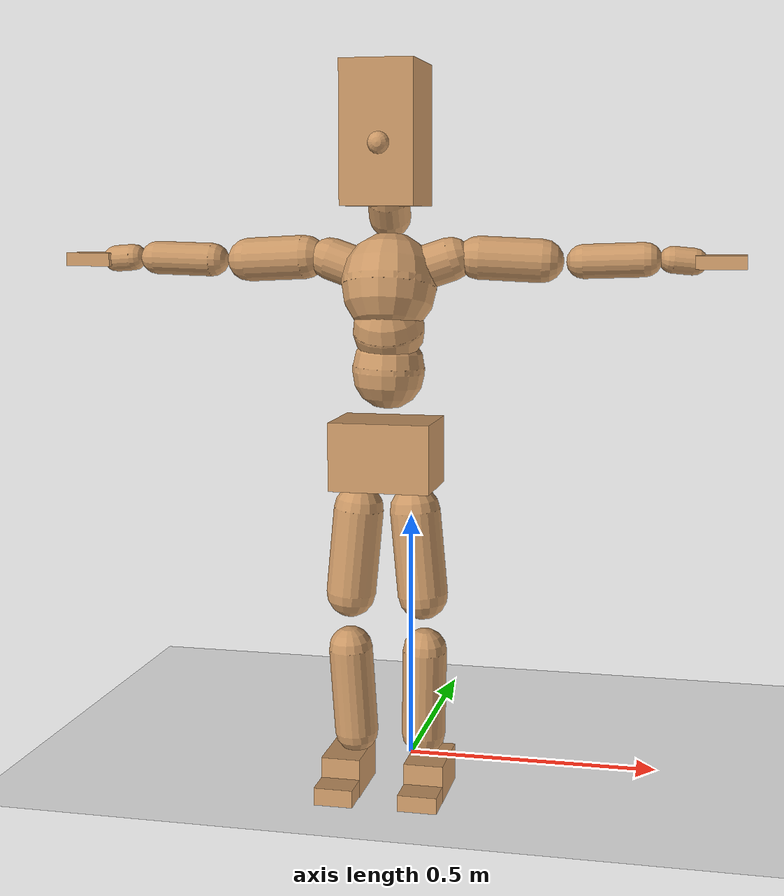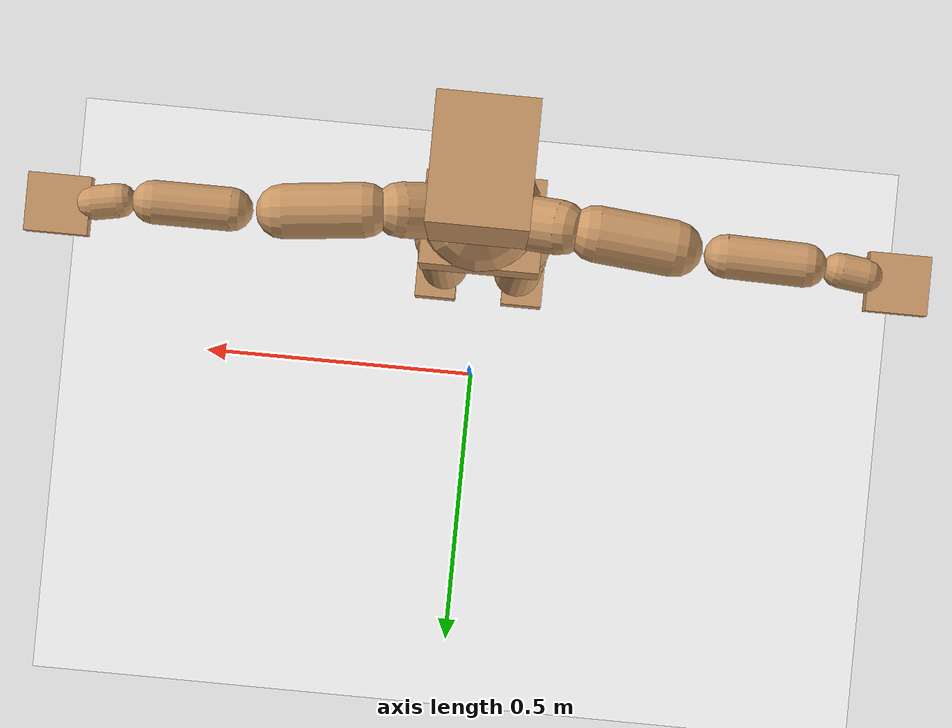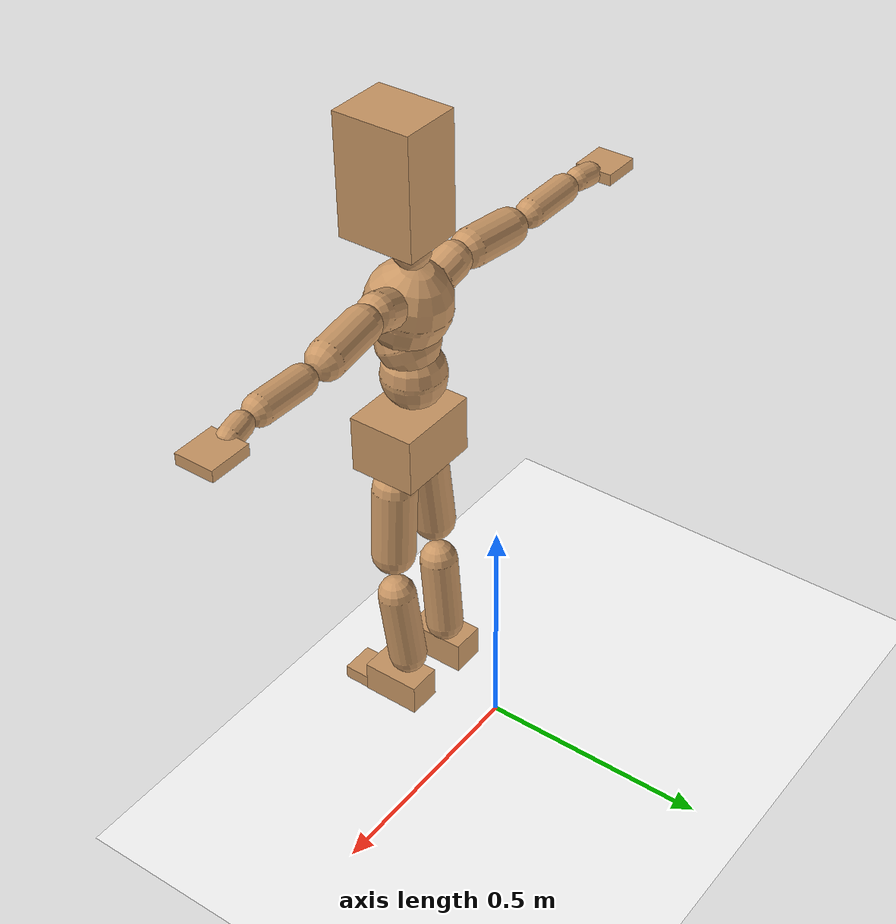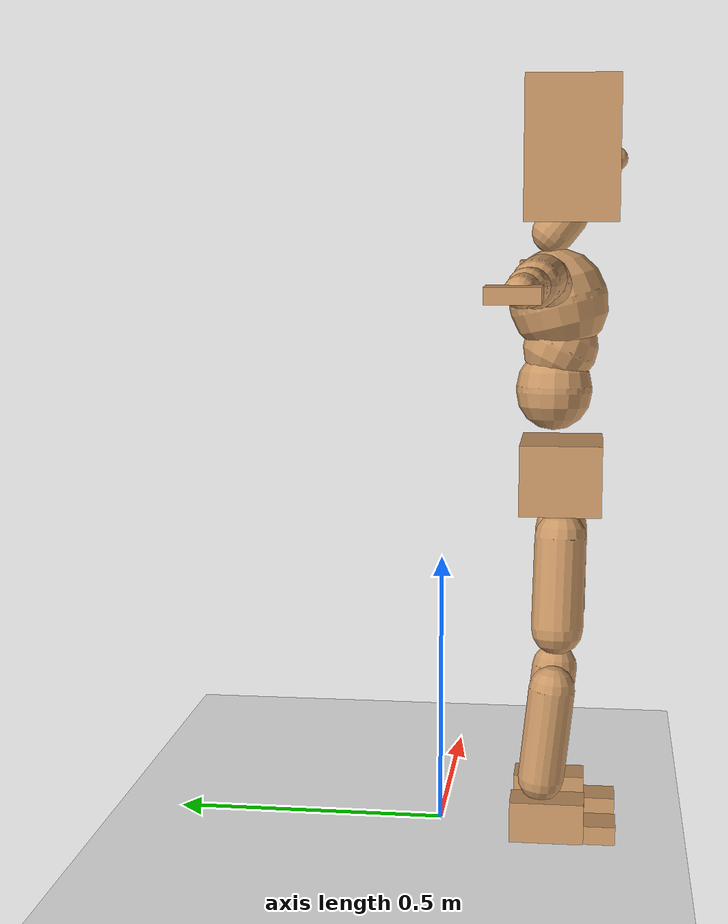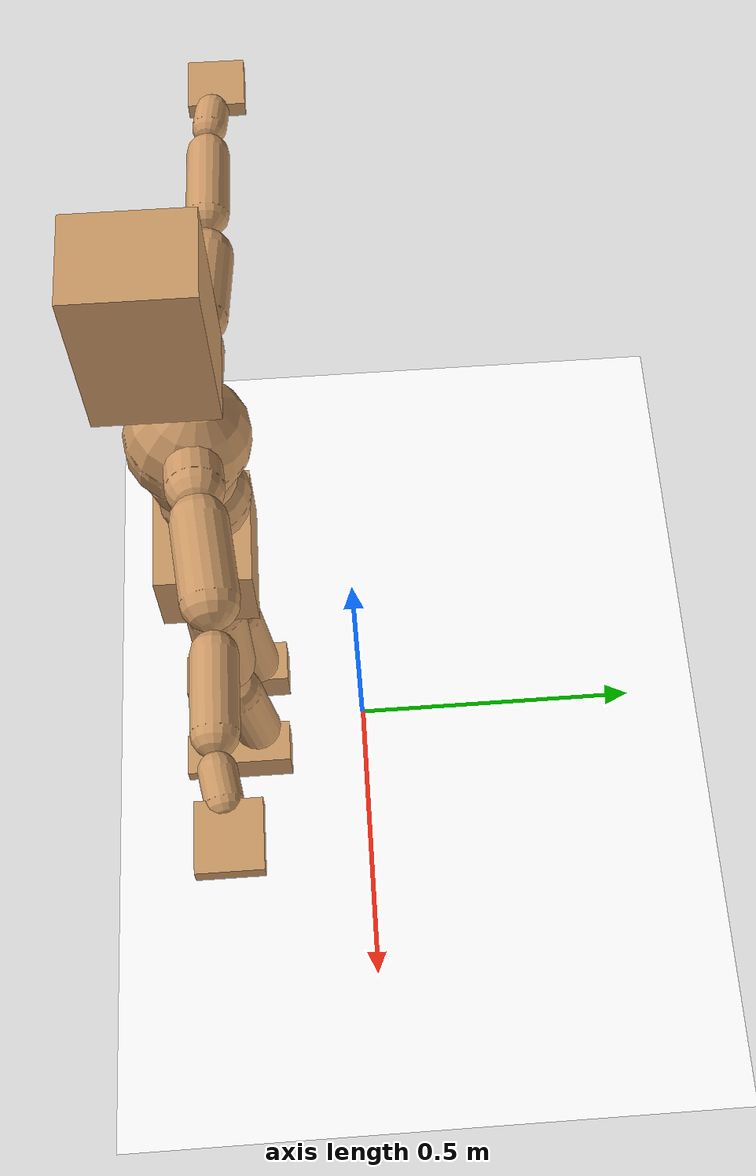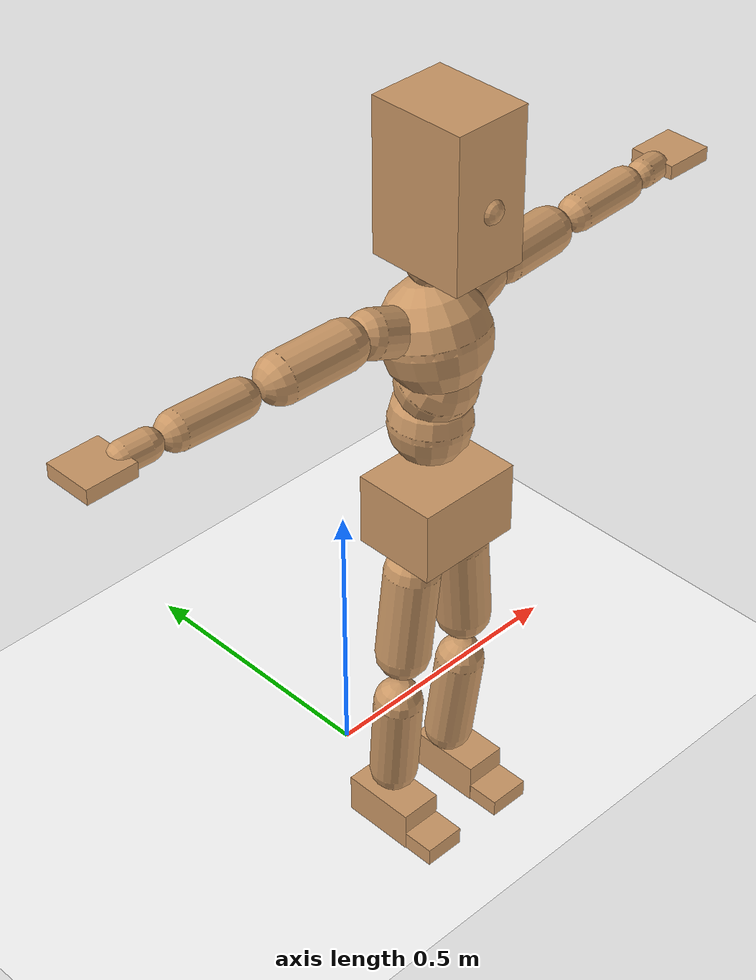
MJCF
<mujoco model="humanoid">
  <option integrator="implicitfast" />

  <visual>
    <global offwidth="1280" offheight="960" />
    <headlight active="1" ambient="0.34 0.34 0.34" diffuse="0.5 0.5 0.5" />
  </visual>

  <default>
    <joint damping="2" stiffness="2" armature="0.01" limited="true" solimplimit="0 .99 .01" />
    <geom condim="1" friction="0.7 0.005 0.0001" solimp=".99 .99 .003" solref="0.015 1" margin="0.001" rgba="0.8 0.6 .4 1" />
    <default class="smplcontact">
      <geom condim="3" friction="1. 0.005 0.0001" solref="0.015 1" solimp="0.98 0.98 0.001" priority="1" />
    </default>
    <default class="stiff_medium">
      <joint stiffness="10" />
    </default>
    <default class="stiff_medium_higher">
      <joint stiffness="50" />
    </default>
    <default class="stiff_high">
      <joint stiffness="100" />
    </default>
  </default>

  <asset>
    <texture type="skybox" builtin="gradient" rgb1="0.99 0.99 0.99" rgb2="0.608 0.828 0.892" width="100" />
    <texture builtin="flat" height="1278" mark="cross" markrgb="1 1 1" name="texgeom" random="0.01" rgb1="0.8 0.6 0.4" rgb2="0.8 0.6 0.4" type="cube" width="127" />
    <texture name="texplane" type="2d" builtin="checker" markrgb="1 1 1" rgb1="0.756 0.772 0.76" rgb2="0.6 0.6 0.6" width="100" height="100" />
    <material name="MatPlane" reflectance="0.5" texture="texplane" texrepeat="1 1" texuniform="true" />
    <material name="geom" texture="texgeom" texuniform="true" />
  </asset>

  <worldbody>
    <light name="tracking_light" pos="0 0 7" dir="0 0 -1" directional="true" cutoff="100" exponent="1" diffuse="1 1 1" specular="0.1 0.1 0.1" mode="trackcom" />
    <camera name="back" pos="0 3 2.4" xyaxes="-1 0 0 0 -1 2" mode="trackcom" />
    <camera name="side" pos="-3 0 2.4" xyaxes="0 -1 0 1 0 2" mode="trackcom" />
    <camera name="front_side" pos="-2.8 -2.8 0.8" xyaxes="0.5 -0.5 0 0.1 0.1 1" mode="trackcom" />
    <geom condim="3" name="floor" pos="0 0 0" rgba="1 1 1 1" size="100 100 .2" type="plane" material="MatPlane" />
    <body name="Pelvis" pos="-0.0018 -0.2233 0.672608" euler="90 0 0">
      <site name="Pelvis" size="0.01" />
      <freejoint name="Pelvis" />
      <geom type="box" pos="-0.0000 -0.0121 -0.0055" size="0.0948737 0.0640775 0.0736625" quat="1.0000 0.0000 0.0000 0.0000" density="3165.830099" name="Pelvis" />
      <body name="L_Hip" pos="0.0496925 -0.065351 -0.004862">
        <joint name="L_Hip_x" type="hinge" pos="0 0 0" axis="1 0 0" stiffness="3.1557858999999997" range="-160.0 22.92" class="stiff_medium" damping="4.025898541858063" armature="0.0022826304280351814"/>
        <joint name="L_Hip_y" type="hinge" pos="0 0 0" axis="0 1 0" stiffness="3.1624607000000005" range="-70.0 70.0" class="stiff_medium" damping="2.8159651210540835" armature="0.0025074333929250535"/>
        <joint name="L_Hip_z" type="hinge" pos="0 0 0" axis="0 0 1" stiffness="3.1611226000000006" range="-28.65 90.0" class="stiff_medium" damping="2.6860026038692637" armature="0.0022822936345437738"/>
        <geom type="capsule" density="2040.816327" fromto="0.0049335 -0.053625 -0.0006435 0.019591 -0.214643 -0.002574" size="0.0476625" name="L_Hip" />
        <body name="L_Knee" pos="0.0245245 -0.268268 -0.0032175">
          <joint name="L_Knee_x" type="hinge" pos="0 0 0" axis="1 0 0" range="-5.16 171.89" damping="2.1741224999033997" armature="0.002319360665224302" stiffness="0.63686848"/>
          <joint name="L_Knee_y" type="hinge" pos="0 0 0" axis="0 1 0" range="-4.58 6.88" damping="2.2721775038441243" armature="0.0025472915135969936" stiffness="0.63336766"/>
          <joint name="L_Knee_z" type="hinge" pos="0 0 0" axis="0 0 1" range="-6.88 4.58" damping="2.1771021570783384" armature="0.002317693409750456" stiffness="0.63907474"/>
          <geom type="capsule" density="1234.567901" fromto="-0.0019305 -0.056914 -0.0062205 -0.0077935 -0.227656 -0.025025" size="0.0419275" name="L_Knee" />
          <body name="L_Ankle" pos="-0.009724 -0.28457 -0.0312455">
            <joint name="L_Ankle_x" type="hinge" pos="0 0 0" axis="1 0 0" range="-45.84 45.84" class="stiff_medium" damping="1.7383543219121569" armature="0.002522106267759108" stiffness="3.32821"/>
            <joint name="L_Ankle_y" type="hinge" pos="0 0 0" axis="0 1 0" range="-74.48 22.92" class="stiff_medium" damping="0.8709299731366263" armature="0.0025322888549960117" stiffness="3.32821"/>
            <joint name="L_Ankle_z" type="hinge" pos="0 0 0" axis="0 0 1" range="-4.58 4.58" class="stiff_medium" damping="1.7646378238794749" armature="0.0025989501275678127" stiffness="3.32821"/>
            <geom type="box" pos="0.0166595 -0.0170885 0.017303" size="0.0374325 0.03596 0.065875" quat="1.0000 0.0000 0.0000 0.0000" density="449.071558" name="L_Ankle" class="smplcontact" />
            <body name="L_Toe" pos="0.018876 -0.039897 0.0852995">
              <joint name="L_Toe_x" type="hinge" pos="0 0 0" axis="1 0 0" range="-91.67 22.92" armature="0.0026376029774375764" damping="0.5925705563234649" stiffness="0.665642"/>
              <joint name="L_Toe_y" type="hinge" pos="0 0 0" axis="0 1 0" range="-4.58 4.58" armature="0.00268434201334499" damping="0.5977977561762817" stiffness="0.665642"/>
              <joint name="L_Toe_z" type="hinge" pos="0 0 0" axis="0 0 1" range="-4.58 4.58" armature="0.0027788458282327778" damping="0.6082296432757158" stiffness="0.665642"/>
              <geom type="box" pos="-0.002145 0.0039325 0.017732" size="0.037045 0.0155 0.03844" quat="1.0000 0.0000 0.0000 0.0000" density="423.206892" name="L_Toe" class="smplcontact" />
            </body>
          </body>
        </body>
      </body>
      <body name="R_Hip" pos="-0.0484055 -0.0647075 -0.0030745">
        <joint name="R_Hip_x" type="hinge" pos="0 0 0" axis="1 0 0" stiffness="3.1557858999999997" range="-160.0 22.92" class="stiff_medium" damping="4.025898541858063" armature="0.0022826304280351814"/>
        <joint name="R_Hip_y" type="hinge" pos="0 0 0" axis="0 1 0" stiffness="3.1624607000000005" range="-70.0 70.0" class="stiff_medium" damping="2.8159651210540835" armature="0.0025074333929250535"/>
        <joint name="R_Hip_z" type="hinge" pos="0 0 0" axis="0 0 1" stiffness="3.1611226000000006" range="-90.0 28.65" class="stiff_medium" damping="2.6860026038692637" armature="0.0022822936345437738"/>
        <geom type="capsule" density="2040.816327" fromto="-0.0055055 -0.0546975 -0.001287 -0.021879 -0.218861 -0.0050765" size="0.046965" name="R_Hip" />
        <body name="R_Knee" pos="-0.0273845 -0.273559 -0.0063635">
          <joint name="R_Knee_x" type="hinge" pos="0 0 0" axis="1 0 0" range="-5.16 171.89" damping="2.1741224999033997" armature="0.002319360665224302" stiffness="0.63686848"/>
          <joint name="R_Knee_y" type="hinge" pos="0 0 0" axis="0 1 0" range="-6.88 4.58" damping="2.2721775038441243" armature="0.0025472915135969936" stiffness="0.63336766"/>
          <joint name="R_Knee_z" type="hinge" pos="0 0 0" axis="0 0 1" range="-4.58 6.88" damping="2.1771021570783384" armature="0.002317693409750456" stiffness="0.63907474"/>
          <geom type="capsule" density="1234.567901" fromto="0.002288 -0.0569855 -0.0060775 0.009009 -0.22787 -0.024167" size="0.0419275" name="R_Knee" />
          <body name="R_Ankle" pos="0.011297 -0.284856 -0.0302445">
            <joint name="R_Ankle_x" type="hinge" pos="0 0 0" axis="1 0 0" range="-45.84 45.84" class="stiff_medium" damping="1.7383543219121569" armature="0.002522106267759108" stiffness="3.32821"/>
            <joint name="R_Ankle_y" type="hinge" pos="0 0 0" axis="0 1 0" range="-22.92 74.48" class="stiff_medium" damping="0.8709299731366263" armature="0.0025322888549960117" stiffness="3.32821"/>
            <joint name="R_Ankle_z" type="hinge" pos="0 0 0" axis="0 0 1" range="-4.58 4.58" class="stiff_medium" damping="1.7646378238794749" armature="0.0025989501275678127" stiffness="3.32821"/>
            <geom type="box" pos="-0.015158 -0.012441 0.018304" size="0.0374325 0.037045 0.0670375" quat="1.0000 0.0000 0.0000 0.0000" density="434.700981" name="R_Ankle" class="smplcontact" />
            <body name="R_Toe" pos="-0.018161 -0.0343915 0.0881595">
              <joint name="R_Toe_x" type="hinge" pos="0 0 0" axis="1 0 0" range="-91.67 22.92" armature="0.0026376029774375764" damping="0.5925705563234649" stiffness="0.665642"/>
              <joint name="R_Toe_y" type="hinge" pos="0 0 0" axis="0 1 0" range="-4.58 4.58" armature="0.00268434201334499" damping="0.5977977561762817" stiffness="0.665642"/>
              <joint name="R_Toe_z" type="hinge" pos="0 0 0" axis="0 0 1" range="-4.58 4.58" armature="0.0027788458282327778" damping="0.6082296432757158" stiffness="0.665642"/>
              <geom type="box" pos="0.003003 0.0032175 0.0162305" size="0.0371225 0.01674 0.0382075" quat="1.0000 0.0000 0.0000 0.0000" density="407.384095" name="R_Toe" class="smplcontact" />
            </body>
          </body>
        </body>
      </body>
      <body name="Torso" pos="-0.00203125 0.0885625 -0.0216938">
        <joint name="Torso_x" type="hinge" pos="0 0 0" axis="1 0 0" range="-25.78 57.3" class="stiff_medium" damping="9.994283800374737" armature="0.006507570999936357" stiffness="6.821846170212766"/>
        <joint name="Torso_y" type="hinge" pos="0 0 0" axis="0 1 0" range="-57.3 57.3" class="stiff_high" damping="8.753897819572359" armature="0.0027081106237385054" stiffness="70.74187291666667"/>
        <joint name="Torso_z" type="hinge" pos="0 0 0" axis="0 0 1" range="-34.38 34.38" class="stiff_high" damping="11.82187074003732" armature="0.005188064995114073" stiffness="67.34525681818181"/>
        <geom type="capsule" density="2040.816327" fromto="0.00203125 0.0494 0.00040625 0.0024375 0.0603688 0.0004875" size="0.0682487" name="Torso" />
        <body name="Spine" pos="0.00446875 0.10985 0.00089375">
          <joint name="Spine_x" type="hinge" pos="0 0 0" axis="1 0 0" stiffness="7.167283333333333" range="-25.78 57.3" class="stiff_medium" damping="11.193627746528671" armature="0.007769706769594652"/>
          <joint name="Spine_y" type="hinge" pos="0 0 0" axis="0 1 0" stiffness="7.53591075" range="-57.3 57.3" class="stiff_high" damping="3.6005525001085057" armature="0.002687958599189059"/>
          <joint name="Spine_z" type="hinge" pos="0 0 0" axis="0 0 1" stiffness="15.408532444444443" range="-34.38 34.38" class="stiff_high" damping="7.409908682139257" armature="0.0049491650590715594"/>
          <geom type="capsule" density="2040.816327" fromto="0.00056875 0.0193375 0.0092625 0.00065 0.0236438 0.011375" size="0.0670062" name="Spine" />
          <body name="Chest" pos="0.00121875 0.0429812 0.0206375">
            <joint name="Chest_x" type="hinge" pos="0 0 0" axis="1 0 0" stiffness="7.83186564102564" range="-25.78 57.3" class="stiff_medium" damping="12.21355434238851" armature="0.008465183790980255"/>
            <joint name="Chest_y" type="hinge" pos="0 0 0" axis="0 1 0" stiffness="7.006512608695653" range="-57.3 57.3" class="stiff_high" damping="3.450365371342459" armature="0.0026549007555181775"/>
            <joint name="Chest_z" type="hinge" pos="0 0 0" axis="0 0 1" stiffness="16.419637368421053" range="-34.38 34.38" class="stiff_high" damping="7.489992067292679" armature="0.0047453326016269224"/>
            <geom type="capsule" density="2040.816327" fromto="-0.00073125 0.0554125 -0.0140562 -0.0008125 0.0676812 -0.017225" size="0.0889275" name="Chest" />
            <body name="Neck" pos="-0.002275 0.173794 -0.0348562">
              <joint name="Neck_x" type="hinge" pos="0 0 0" axis="1 0 0" range="-28.65 57.3" class="stiff_medium_higher" damping="14.3871556586408" armature="0.015114227395169953" stiffness="68.47529897959183"/>
              <joint name="Neck_y" type="hinge" pos="0 0 0" axis="0 1 0" range="-40.11 40.11" class="stiff_medium_higher" damping="14.697656227126172" armature="0.01569823710106506" stiffness="68.804254"/>
              <joint name="Neck_z" type="hinge" pos="0 0 0" axis="0 0 1" range="-40.11 40.11" class="stiff_medium_higher" damping="14.542129157567018" armature="0.015132360867987043" stiffness="69.87459600000001"/>
              <geom type="capsule" density="1000" fromto="0.0008125 0.0105625 0.00836875 0.00333125 0.04225 0.0333937" size="0.038695" name="Neck" />
              <body name="Head" pos="0.005395 0.0674375 0.0532238">
                <joint name="Head_x" type="hinge" pos="0 0 0" axis="1 0 0" range="-28.65 57.3" class="stiff_medium_higher" damping="3.006435346450607" armature="0.015818080190691527" stiffness="71.42660000000001"/>
                <joint name="Head_y" type="hinge" pos="0 0 0" axis="0 1 0" range="-40.11 40.11" class="stiff_medium_higher" damping="3.1111271871938317" armature="0.01693891417010015" stiffness="71.42660000000001"/>
                <joint name="Head_z" type="hinge" pos="0 0 0" axis="0 0 1" range="-40.11 40.11" class="stiff_medium_higher" damping="3.001156765649567" armature="0.01576258342830992" stiffness="71.42660000000001"/>
                <geom type="box" pos="-0.0043575 0.090885 -0.012035" size="0.0674175 0.128383 0.08455" quat="1.0000 0.0000 0.0000 0.0000" density="1018.069894" name="Head" />
                <geom type="capsule" name="nose" size="0.02225 0.011125" pos="0 0.072625 0.051875" quat="1 0 0 0" mass="0" contype="0" conaffinity="0" />
              </body>
            </body>
            <body name="L_Thorax" pos="0.058115 0.0897538 -0.0251488">
              <joint name="L_Thorax_x" type="hinge" pos="0 0 0" axis="1 0 0" range="-10.89 4.58" class="stiff_medium_higher" damping="5.85684866620945" armature="0.002574137580271888" stiffness="16.6573635"/>
              <joint name="L_Thorax_y" type="hinge" pos="0 0 0" axis="0 1 0" range="-28.65 17.19" class="stiff_medium_higher" damping="5.728291605554939" armature="0.002465354698788312" stiffness="16.637223000000002"/>
              <joint name="L_Thorax_z" type="hinge" pos="0 0 0" axis="0 0 1" range="-31.51 40.11" class="stiff_medium_higher" damping="5.728243594611154" armature="0.002465256398734292" stiffness="16.6376075"/>
              <geom type="capsule" density="1000" fromto="0.0134225 0.00449875 -0.0013275 0.05369 0.017995 -0.00523625" size="0.0403775" name="L_Thorax" />
              <body name="L_Shoulder" pos="0.0671125 0.0224937 -0.00656375">
                <joint name="L_Shoulder_x" type="hinge" pos="0 0 0" axis="1 0 0" range="-97.4 97.4" class="stiff_medium" damping="1.7720426341330549" armature="0.002616637975370057" stiffness="3.3335133"/>
                <joint name="L_Shoulder_y" type="hinge" pos="0 0 0" axis="0 1 0" range="-108.86 80.21" class="stiff_medium" damping="1.7203044853046314" armature="0.002469151422900235" stiffness="3.3293573999999992"/>
                <joint name="L_Shoulder_z" type="hinge" pos="0 0 0" axis="0 0 1" range="-97.4 85.94" class="stiff_medium" damping="1.7202281304894236" armature="0.0024690233853784456" stiffness="3.3292345"/>
                <geom type="capsule" density="1000" fromto="0.0382763 -0.0019175 -0.00405625 0.153179 -0.0075225 -0.016225" size="0.0400675" name="L_Shoulder" />
                <body name="L_Elbow" pos="0.191455 -0.00944 -0.0202813">
                  <joint name="L_Elbow_x" type="hinge" pos="0 0 0" axis="1 0 0" range="-17.19 4.58" damping="1.4987477932991493" armature="0.002684839126580657" stiffness="0.66931234"/>
                  <joint name="L_Elbow_y" type="hinge" pos="0 0 0" axis="0 1 0" range="-180.0 17.19" damping="1.4426558020160019" armature="0.0024876588712752705" stiffness="0.66930584"/>
                  <joint name="L_Elbow_z" type="hinge" pos="0 0 0" axis="0 0 1" range="-100.84 4.58" damping="1.4425586308933855" armature="0.002486987117607018" stiffness="0.66939644"/>
                  <geom type="capsule" density="1000" fromto="0.0367275 0.0013275 -0.0001475 0.147058 0.00531 -0.00066375" size="0.0313875" name="L_Elbow" />
                  <body name="L_Wrist" pos="0.183785 0.0066375 -0.000885">
                    <joint name="L_Wrist_x" type="hinge" pos="0 0 0" axis="1 0 0" range="-180.0 22.92" armature="0.0027055381806436697" damping="0.606849789522334" stiffness="0.6805793199999999"/>
                    <joint name="L_Wrist_y" type="hinge" pos="0 0 0" axis="0 1 0" range="-17.19 17.19" armature="0.002551230244423449" damping="0.5889137571171685" stiffness="0.6797101400000001"/>
                    <joint name="L_Wrist_z" type="hinge" pos="0 0 0" axis="0 0 1" range="-22.92 22.92" armature="0.0025426045026162446" damping="0.5880384327063412" stiffness="0.67999014"/>
                    <geom type="capsule" density="1000" fromto="0.01239 -0.00118 -0.0022125 0.04956 -0.00479375 -0.00885" size="0.024645" name="L_Wrist" class="smplcontact" />
                    <body name="L_Hand" pos="0.06195 -0.0060475 -0.0109888">
                      <joint name="L_Hand_x" type="hinge" pos="0 0 0" axis="1 0 0" range="-17.19 17.19" armature="0.002784313323872768" damping="0.6183335520223482" stiffness="0.68659008"/>
                      <joint name="L_Hand_y" type="hinge" pos="0 0 0" axis="0 1 0" range="-51.57 51.57" armature="0.00265671409717135" damping="0.6039989048187354" stiffness="0.6865900200000001"/>
                      <joint name="L_Hand_z" type="hinge" pos="0 0 0" axis="0 0 1" range="-91.67 91.67" armature="0.002622700749413449" damping="0.6001200059221122" stiffness="0.68659"/>
                      <geom type="box" pos="0.0363588 0.0007375 -0.0042775" size="0.0453375 0.012245 0.041695" quat="1.0000 0.0000 0.0000 0.0000" density="400.552564" name="L_Hand" class="smplcontact" />
                    </body>
                  </body>
                </body>
              </body>
            </body>
            <body name="R_Thorax" pos="-0.0603275 0.087615 -0.0284675">
              <joint name="R_Thorax_x" type="hinge" pos="0 0 0" axis="1 0 0" range="-10.89 4.58" class="stiff_medium_higher" damping="5.85684866620945" armature="0.002574137580271888" stiffness="16.6573635"/>
              <joint name="R_Thorax_y" type="hinge" pos="0 0 0" axis="0 1 0" range="-17.19 28.65" class="stiff_medium_higher" damping="5.728291605554939" armature="0.002465354698788312" stiffness="16.637223000000002"/>
              <joint name="R_Thorax_z" type="hinge" pos="0 0 0" axis="0 0 1" range="-40.11 31.51" class="stiff_medium_higher" damping="5.728243594611154" armature="0.002465256398734292" stiffness="16.6376075"/>
              <geom type="capsule" density="1000" fromto="-0.01416 0.00479375 -0.0013275 -0.05664 0.019175 -0.00538375" size="0.0396025" name="R_Thorax" />
              <body name="R_Shoulder" pos="-0.0708 0.0240425 -0.00671125">
                <joint name="R_Shoulder_x" type="hinge" pos="0 0 0" axis="1 0 0" range="-97.4 97.4" class="stiff_medium" damping="1.7720426341330549" armature="0.002616637975370057" stiffness="3.3335133"/>
                <joint name="R_Shoulder_y" type="hinge" pos="0 0 0" axis="0 1 0" range="-80.21 108.86" class="stiff_medium" damping="1.7203044853046314" armature="0.002469151422900235" stiffness="3.3293573999999992"/>
                <joint name="R_Shoulder_z" type="hinge" pos="0 0 0" axis="0 0 1" range="-85.94 97.4" class="stiff_medium" damping="1.7202281304894236" armature="0.0024690233853784456" stiffness="3.3292345"/>
                <geom type="capsule" density="1000" fromto="-0.0373913 -0.00199125 -0.00317125 -0.149713 -0.00789125 -0.0126113" size="0.0411525" name="R_Shoulder" />
                <body name="R_Elbow" pos="-0.187104 -0.00980875 -0.0157825">
                  <joint name="R_Elbow_x" type="hinge" pos="0 0 0" axis="1 0 0" range="-17.19 4.58" damping="1.4987477932991493" armature="0.002684839126580657" stiffness="0.66931234"/>
                  <joint name="R_Elbow_y" type="hinge" pos="0 0 0" axis="0 1 0" range="-17.19 180.0" damping="1.4426558020160019" armature="0.0024876588712752705" stiffness="0.66930584"/>
                  <joint name="R_Elbow_z" type="hinge" pos="0 0 0" axis="0 0 1" range="-4.58 100.84" damping="1.4425586308933855" armature="0.002486987117607018" stiffness="0.66939644"/>
                  <geom type="capsule" density="1000" fromto="-0.0376863 0.00118 -0.00081125 -0.150597 0.0045725 -0.003245" size="0.03162" name="R_Elbow" />
                  <body name="R_Wrist" pos="-0.188284 0.0057525 -0.00413">
                    <joint name="R_Wrist_x" type="hinge" pos="0 0 0" axis="1 0 0" range="-180.0 22.92" armature="0.0027055381806436697" damping="0.606849789522334" stiffness="0.6805793199999999"/>
                    <joint name="R_Wrist_y" type="hinge" pos="0 0 0" axis="0 1 0" range="-17.19 17.19" armature="0.002551230244423449" damping="0.5889137571171685" stiffness="0.6797101400000001"/>
                    <joint name="R_Wrist_z" type="hinge" pos="0 0 0" axis="0 0 1" range="-22.92 22.92" armature="0.0025426045026162446" damping="0.5880384327063412" stiffness="0.67999014"/>
                    <geom type="capsule" density="1000" fromto="-0.0124637 -0.000885 -0.00154875 -0.0499288 -0.00361375 -0.00612125" size="0.025265" name="R_Wrist" class="smplcontact" />
                    <body name="R_Hand" pos="-0.0623925 -0.00449875 -0.00759625">
                      <joint name="R_Hand_x" type="hinge" pos="0 0 0" axis="1 0 0" range="-17.19 17.19" armature="0.002784313323872768" damping="0.6183335520223482" stiffness="0.68659008"/>
                      <joint name="R_Hand_y" type="hinge" pos="0 0 0" axis="0 1 0" range="-51.57 51.57" armature="0.00265671409717135" damping="0.6039989048187354" stiffness="0.6865900200000001"/>
                      <joint name="R_Hand_z" type="hinge" pos="0 0 0" axis="0 0 1" range="-91.67 91.67" armature="0.002622700749413449" damping="0.6001200059221122" stiffness="0.68659"/>
                      <geom type="box" pos="-0.0340725 -0.00066375 -0.00582625" size="0.0440975 0.01271 0.042315" quat="1.0000 0.0000 0.0000 0.0000" density="403.679611" name="R_Hand" class="smplcontact" />
                    </body>
                  </body>
                </body>
              </body>
            </body>
          </body>
        </body>
      </body>
    </body>
  </worldbody>
  <actuator>
    <general name="L_Hip_x" joint="L_Hip_x" biastype="affine" gainprm="90.67521649244264" biasprm="-67.9518843034334 -56.8041462 -0.5367864722477418" ctrllimited="true" ctrlrange="-1 1" forcerange="-113.6082924 113.6082924" />
    <general name="L_Hip_y" joint="L_Hip_y" biastype="affine" gainprm="69.54614311670505" biasprm="0.0 -56.92429260000001 -0.5631930242108167" ctrllimited="true" ctrlrange="-1 1" forcerange="-113.84858520000002 113.84858520000002" />
    <general name="L_Hip_z" joint="L_Hip_z" biastype="affine" gainprm="58.91541745477518" biasprm="30.463218380534826 -56.90020680000001 -0.5372005207738527" ctrllimited="true" ctrlrange="-1 1" forcerange="-113.80041360000001 113.80041360000001" />
    <general name="L_Knee_x" joint="L_Knee_x" biastype="affine" gainprm="88.55958397636313" biasprm="83.39756812414021 -57.318163199999994 -0.5435306249758499" ctrllimited="true" ctrlrange="-1 1" forcerange="-114.63632639999999 114.63632639999999" />
    <general name="L_Knee_y" joint="L_Knee_y" biastype="affine" gainprm="5.7007288326956305" biasprm="1.1441253329144807 -57.0030894 -0.5680443759610311" ctrllimited="true" ctrlrange="-1 1" forcerange="-114.0061788 114.0061788" />
    <general name="L_Knee_z" joint="L_Knee_z" biastype="affine" gainprm="5.752096336218782" biasprm="-1.1544346922603141 -57.5167266 -0.5442755392695846" ctrllimited="true" ctrlrange="-1 1" forcerange="-115.0334532 115.0334532" />
    <general name="L_Ankle_x" joint="L_Ankle_x" biastype="affine" gainprm="23.964877156204565" biasprm="0.0 -29.953889999999998 -0.5794514406373856" ctrllimited="true" ctrlrange="-1 1" forcerange="-59.907779999999995 59.907779999999995" />
    <general name="L_Ankle_y" joint="L_Ankle_y" biastype="affine" gainprm="25.46006800844595" biasprm="-13.477629430343667 -29.953889999999998 -0.5806199820910842" ctrllimited="true" ctrlrange="-1 1" forcerange="-59.907779999999995 59.907779999999995" />
    <general name="L_Ankle_z" joint="L_Ankle_z" biastype="affine" gainprm="2.3943965396033353" biasprm="0.0 -29.953889999999998 -0.588212607959825" ctrllimited="true" ctrlrange="-1 1" forcerange="-59.907779999999995 59.907779999999995" />
    <general name="L_Toe_x" joint="L_Toe_x" biastype="affine" gainprm="23.96278598018744" biasprm="-14.376835117705616 -23.963112 -0.23702822252938596" ctrllimited="true" ctrlrange="-1 1" forcerange="-47.926224 47.926224" />
    <general name="L_Toe_y" joint="L_Toe_y" biastype="affine" gainprm="1.9155172316826683" biasprm="0.0 -23.963112 -0.2391191024705127" ctrllimited="true" ctrlrange="-1 1" forcerange="-47.926224 47.926224" />
    <general name="L_Toe_z" joint="L_Toe_z" biastype="affine" gainprm="1.9155172316826683" biasprm="0.0 -23.963112 -0.24329185731028635" ctrllimited="true" ctrlrange="-1 1" forcerange="-47.926224 47.926224" />
    <general name="R_Hip_x" joint="R_Hip_x" biastype="affine" gainprm="90.67521649244264" biasprm="-67.9518843034334 -56.8041462 -0.5367864722477418" ctrllimited="true" ctrlrange="-1 1" forcerange="-113.6082924 113.6082924" />
    <general name="R_Hip_y" joint="R_Hip_y" biastype="affine" gainprm="69.54614311670505" biasprm="0.0 -56.92429260000001 -0.5631930242108167" ctrllimited="true" ctrlrange="-1 1" forcerange="-113.84858520000002 113.84858520000002" />
    <general name="R_Hip_z" joint="R_Hip_z" biastype="affine" gainprm="58.91541745477518" biasprm="-30.463218380534826 -56.90020680000001 -0.5372005207738527" ctrllimited="true" ctrlrange="-1 1" forcerange="-113.80041360000001 113.80041360000001" />
    <general name="R_Knee_x" joint="R_Knee_x" biastype="affine" gainprm="88.55958397636313" biasprm="83.39756812414021 -57.318163199999994 -0.5435306249758499" ctrllimited="true" ctrlrange="-1 1" forcerange="-114.63632639999999 114.63632639999999" />
    <general name="R_Knee_y" joint="R_Knee_y" biastype="affine" gainprm="5.7007288326956305" biasprm="-1.1441253329144807 -57.0030894 -0.5680443759610311" ctrllimited="true" ctrlrange="-1 1" forcerange="-114.0061788 114.0061788" />
    <general name="R_Knee_z" joint="R_Knee_z" biastype="affine" gainprm="5.752096336218782" biasprm="1.1544346922603141 -57.5167266 -0.5442755392695846" ctrllimited="true" ctrlrange="-1 1" forcerange="-115.0334532 115.0334532" />
    <general name="R_Ankle_x" joint="R_Ankle_x" biastype="affine" gainprm="23.964877156204565" biasprm="0.0 -29.953889999999998 -0.5794514406373856" ctrllimited="true" ctrlrange="-1 1" forcerange="-59.907779999999995 59.907779999999995" />
    <general name="R_Ankle_y" joint="R_Ankle_y" biastype="affine" gainprm="25.46006800844595" biasprm="13.477629430343667 -29.953889999999998 -0.5806199820910842" ctrllimited="true" ctrlrange="-1 1" forcerange="-59.907779999999995 59.907779999999995" />
    <general name="R_Ankle_z" joint="R_Ankle_z" biastype="affine" gainprm="2.3943965396033353" biasprm="0.0 -29.953889999999998 -0.588212607959825" ctrllimited="true" ctrlrange="-1 1" forcerange="-59.907779999999995 59.907779999999995" />
    <general name="R_Toe_x" joint="R_Toe_x" biastype="affine" gainprm="23.96278598018744" biasprm="-14.376835117705616 -23.963112 -0.23702822252938596" ctrllimited="true" ctrlrange="-1 1" forcerange="-47.926224 47.926224" />
    <general name="R_Toe_y" joint="R_Toe_y" biastype="affine" gainprm="1.9155172316826683" biasprm="0.0 -23.963112 -0.2391191024705127" ctrllimited="true" ctrlrange="-1 1" forcerange="-47.926224 47.926224" />
    <general name="R_Toe_z" joint="R_Toe_z" biastype="affine" gainprm="1.9155172316826683" biasprm="0.0 -23.963112 -0.24329185731028635" ctrllimited="true" ctrlrange="-1 1" forcerange="-47.926224 47.926224" />
    <general name="Torso_x" joint="Torso_x" biastype="affine" gainprm="118.70172315750457" biasprm="45.034645088162534 -163.7243080851064 -2.6651423467665962" ctrllimited="true" ctrlrange="-1 1" forcerange="-245.5864621276596 245.5864621276596" />
    <general name="Torso_y" joint="Torso_y" biastype="affine" gainprm="169.7930012677236" biasprm="0.0 -169.78049499999997 -1.7507795639144716" ctrllimited="true" ctrlrange="-1 1" forcerange="-254.67074249999996 254.67074249999996" />
    <general name="Torso_z" joint="Torso_z" biastype="affine" gainprm="96.98431329157566" biasprm="0.0 -161.62861636363635 -2.3643741480074643" ctrllimited="true" ctrlrange="-1 1" forcerange="-242.4429245454545 242.4429245454545" />
    <general name="Spine_x" joint="Spine_x" biastype="affine" gainprm="124.71241080450737" biasprm="47.31506004523437 -172.01479999999998 -2.9849673990743124" ctrllimited="true" ctrlrange="-1 1" forcerange="-258.0222 258.0222" />
    <general name="Spine_y" joint="Spine_y" biastype="affine" gainprm="180.87518053635577" biasprm="0.0 -180.861858 -1.8002762500542528" ctrllimited="true" ctrlrange="-1 1" forcerange="-271.292787 271.292787" />
    <general name="Spine_z" joint="Spine_z" biastype="affine" gainprm="110.94960570051275" biasprm="0.0 -184.9023893333333 -2.4699695607130856" ctrllimited="true" ctrlrange="-1 1" forcerange="-277.35358399999996 277.35358399999996" />
    <general name="Chest_x" joint="Chest_x" biastype="affine" gainprm="136.2762988100042" biasprm="51.7023223217541 -187.96477538461536 -3.2569478246369363" ctrllimited="true" ctrlrange="-1 1" forcerange="-281.94716307692306 281.94716307692306" />
    <general name="Chest_y" joint="Chest_y" biastype="affine" gainprm="168.16868923614564" biasprm="0.0 -168.15630260869568 -1.7251826856712296" ctrllimited="true" ctrlrange="-1 1" forcerange="-252.23445391304352 252.23445391304352" />
    <general name="Chest_z" joint="Chest_z" biastype="affine" gainprm="118.23009740480217" biasprm="0.0 -197.03564842105266 -2.496664022430893" ctrllimited="true" ctrlrange="-1 1" forcerange="-295.553472631579 295.553472631579" />
    <general name="Neck_x" joint="Neck_x" biastype="affine" gainprm="36.97938520136119" biasprm="12.326461733787063 -49.30221526530612 -1.1509724526912641" ctrllimited="true" ctrlrange="-1 1" forcerange="-98.60443053061223 98.60443053061223" />
    <general name="Neck_y" joint="Neck_y" biastype="affine" gainprm="34.679898397457116" biasprm="0.0 -49.539062879999996 -1.175812498170094" ctrllimited="true" ctrlrange="-1 1" forcerange="-99.07812575999999 99.07812575999999" />
    <general name="Neck_z" joint="Neck_z" biastype="affine" gainprm="35.219390502269874" biasprm="0.0 -50.30970912000001 -1.1633703326053615" ctrllimited="true" ctrlrange="-1 1" forcerange="-100.61941824000002 100.61941824000002" />
    <general name="Head_x" joint="Head_x" biastype="affine" gainprm="25.715470097820766" biasprm="8.571823365940254 -34.284768 -1.2025741385802429" ctrllimited="true" ctrlrange="-1 1" forcerange="-68.569536 68.569536" />
    <general name="Head_y" joint="Head_y" biastype="affine" gainprm="24.001105424632716" biasprm="0.0 -34.284768 -1.2444508748775327" ctrllimited="true" ctrlrange="-1 1" forcerange="-68.569536 68.569536" />
    <general name="Head_z" joint="Head_z" biastype="affine" gainprm="24.001105424632716" biasprm="0.0 -34.284768 -1.2004627062598268" ctrllimited="true" ctrlrange="-1 1" forcerange="-68.569536 68.569536" />
    <general name="L_Thorax_x" joint="L_Thorax_x" biastype="affine" gainprm="5.397034452483436" biasprm="-2.201376043643859 -39.9776724 -0.468547893296756" ctrllimited="true" ctrlrange="-1 1" forcerange="-79.9553448 79.9553448" />
    <general name="L_Thorax_y" joint="L_Thorax_y" biastype="affine" gainprm="15.972910580176979" biasprm="-3.9932276450442448 -39.929335200000004 -0.45826332844439516" ctrllimited="true" ctrlrange="-1 1" forcerange="-79.85867040000001 79.85867040000001" />
    <general name="L_Thorax_z" joint="L_Thorax_z" biastype="affine" gainprm="24.956507287827563" biasprm="2.9967322350644654 -39.930258 -0.45825948756889234" ctrllimited="true" ctrlrange="-1 1" forcerange="-79.860516 79.860516" />
    <general name="L_Shoulder_x" joint="L_Shoulder_x" biastype="affine" gainprm="27.20067954848493" biasprm="0.0 -16.00086384 -0.47254470243548136" ctrllimited="true" ctrlrange="-1 1" forcerange="-32.00172768 32.00172768" />
    <general name="L_Shoulder_y" joint="L_Shoulder_y" biastype="affine" gainprm="26.36766375328307" biasprm="-3.995523174123658 -15.980915519999996 -0.45874786274790175" ctrllimited="true" ctrlrange="-1 1" forcerange="-31.961831039999993 31.961831039999993" />
    <general name="L_Shoulder_z" joint="L_Shoulder_z" biastype="affine" gainprm="25.567615279891886" biasprm="-1.5981502733040343 -15.9803256 -0.45872750146384633" ctrllimited="true" ctrlrange="-1 1" forcerange="-31.9606512 31.9606512" />
    <general name="L_Elbow_x" joint="L_Elbow_x" biastype="affine" gainprm="4.577592551865263" biasprm="-2.651513186909554 -24.09524424 -0.23979964692786393" ctrllimited="true" ctrlrange="-1 1" forcerange="-48.19048848 48.19048848" />
    <general name="L_Elbow_y" joint="L_Elbow_y" biastype="affine" gainprm="41.462871345879314" biasprm="-34.23383581227553 -24.09501024 -0.2308249283225603" ctrllimited="true" ctrlrange="-1 1" forcerange="-48.19002048 48.19002048" />
    <general name="L_Elbow_z" joint="L_Elbow_z" biastype="affine" gainprm="22.1695196309594" biasprm="-20.243198251528668 -24.09827184 -0.23080938094294168" ctrllimited="true" ctrlrange="-1 1" forcerange="-48.19654368 48.19654368" />
    <general name="L_Wrist_x" joint="L_Wrist_x" biastype="affine" gainprm="7.231064318596116" biasprm="-5.5975536327867035 -4.08347592 -0.24273991580893362" ctrllimited="true" ctrlrange="-1 1" forcerange="-8.16695184 8.16695184" />
    <general name="L_Wrist_y" joint="L_Wrist_y" biastype="affine" gainprm="1.223568375112043" biasprm="0.0 -4.07826084 -0.23556550284686742" ctrllimited="true" ctrlrange="-1 1" forcerange="-8.15652168 8.15652168" />
    <general name="L_Wrist_z" joint="L_Wrist_z" biastype="affine" gainprm="1.6320965496498465" biasprm="0.0 -4.07994084 -0.23521537308253648" ctrllimited="true" ctrlrange="-1 1" forcerange="-8.15988168 8.15988168" />
    <general name="L_Hand_x" joint="L_Hand_x" biastype="affine" gainprm="1.2359531793267753" biasprm="0.0 -4.1195404799999995 -0.24733342080893927" ctrllimited="true" ctrlrange="-1 1" forcerange="-8.239080959999999 8.239080959999999" />
    <general name="L_Hand_y" joint="L_Hand_y" biastype="affine" gainprm="3.7078592139564592" biasprm="0.0 -4.119540120000001 -0.24159956192749418" ctrllimited="true" ctrlrange="-1 1" forcerange="-8.239080240000002 8.239080240000002" />
    <general name="L_Hand_z" joint="L_Hand_z" biastype="affine" gainprm="6.591030526319552" biasprm="0.0 -4.119540000000001 -0.2400480023688449" ctrllimited="true" ctrlrange="-1 1" forcerange="-8.239080000000001 8.239080000000001" />
    <general name="R_Thorax_x" joint="R_Thorax_x" biastype="affine" gainprm="5.397034452483436" biasprm="-2.201376043643859 -39.9776724 -0.468547893296756" ctrllimited="true" ctrlrange="-1 1" forcerange="-79.9553448 79.9553448" />
    <general name="R_Thorax_y" joint="R_Thorax_y" biastype="affine" gainprm="15.972910580176979" biasprm="3.9932276450442425 -39.929335200000004 -0.45826332844439516" ctrllimited="true" ctrlrange="-1 1" forcerange="-79.85867040000001 79.85867040000001" />
    <general name="R_Thorax_z" joint="R_Thorax_z" biastype="affine" gainprm="24.956507287827563" biasprm="-2.9967322350644654 -39.930258 -0.45825948756889234" ctrllimited="true" ctrlrange="-1 1" forcerange="-79.860516 79.860516" />
    <general name="R_Shoulder_x" joint="R_Shoulder_x" biastype="affine" gainprm="27.20067954848493" biasprm="0.0 -16.00086384 -0.47254470243548136" ctrllimited="true" ctrlrange="-1 1" forcerange="-32.00172768 32.00172768" />
    <general name="R_Shoulder_y" joint="R_Shoulder_y" biastype="affine" gainprm="26.36766375328307" biasprm="3.995523174123658 -15.980915519999996 -0.45874786274790175" ctrllimited="true" ctrlrange="-1 1" forcerange="-31.961831039999993 31.961831039999993" />
    <general name="R_Shoulder_z" joint="R_Shoulder_z" biastype="affine" gainprm="25.567615279891886" biasprm="1.5981502733040307 -15.9803256 -0.45872750146384633" ctrllimited="true" ctrlrange="-1 1" forcerange="-31.9606512 31.9606512" />
    <general name="R_Elbow_x" joint="R_Elbow_x" biastype="affine" gainprm="4.577592551865263" biasprm="-2.651513186909554 -24.09524424 -0.23979964692786393" ctrllimited="true" ctrlrange="-1 1" forcerange="-48.19048848 48.19048848" />
    <general name="R_Elbow_y" joint="R_Elbow_y" biastype="affine" gainprm="41.462871345879314" biasprm="34.23383581227553 -24.09501024 -0.2308249283225603" ctrllimited="true" ctrlrange="-1 1" forcerange="-48.19002048 48.19002048" />
    <general name="R_Elbow_z" joint="R_Elbow_z" biastype="affine" gainprm="22.1695196309594" biasprm="20.243198251528664 -24.09827184 -0.23080938094294168" ctrllimited="true" ctrlrange="-1 1" forcerange="-48.19654368 48.19654368" />
    <general name="R_Wrist_x" joint="R_Wrist_x" biastype="affine" gainprm="7.231064318596116" biasprm="-5.5975536327867035 -4.08347592 -0.24273991580893362" ctrllimited="true" ctrlrange="-1 1" forcerange="-8.16695184 8.16695184" />
    <general name="R_Wrist_y" joint="R_Wrist_y" biastype="affine" gainprm="1.223568375112043" biasprm="0.0 -4.07826084 -0.23556550284686742" ctrllimited="true" ctrlrange="-1 1" forcerange="-8.15652168 8.15652168" />
    <general name="R_Wrist_z" joint="R_Wrist_z" biastype="affine" gainprm="1.6320965496498465" biasprm="0.0 -4.07994084 -0.23521537308253648" ctrllimited="true" ctrlrange="-1 1" forcerange="-8.15988168 8.15988168" />
    <general name="R_Hand_x" joint="R_Hand_x" biastype="affine" gainprm="1.2359531793267753" biasprm="0.0 -4.1195404799999995 -0.24733342080893927" ctrllimited="true" ctrlrange="-1 1" forcerange="-8.239080959999999 8.239080959999999" />
    <general name="R_Hand_y" joint="R_Hand_y" biastype="affine" gainprm="3.7078592139564592" biasprm="0.0 -4.119540120000001 -0.24159956192749418" ctrllimited="true" ctrlrange="-1 1" forcerange="-8.239080240000002 8.239080240000002" />
    <general name="R_Hand_z" joint="R_Hand_z" biastype="affine" gainprm="6.591030526319552" biasprm="0.0 -4.119540000000001 -0.2400480023688449" ctrllimited="true" ctrlrange="-1 1" forcerange="-8.239080000000001 8.239080000000001" />
  </actuator>
  <contact>
    <exclude body1="Torso" body2="Chest" />
    <exclude body1="Head" body2="Chest" />
    <exclude body1="R_Knee" body2="R_Toe" />
    <exclude body1="R_Knee" body2="L_Ankle" />
    <exclude body1="R_Knee" body2="L_Toe" />
    <exclude body1="L_Knee" body2="L_Toe" />
    <exclude body1="L_Knee" body2="R_Ankle" />
    <exclude body1="L_Knee" body2="R_Toe" />
    <exclude body1="L_Shoulder" body2="Chest" />
    <exclude body1="R_Shoulder" body2="Chest" />
  </contact>
  <sensor>
    <framelinvel name="sensor_Pelvis_framelinvel" objtype="xbody" objname="Pelvis" />
    <framelinvel name="sensor_L_Hip_framelinvel" objtype="xbody" objname="L_Hip" />
    <framelinvel name="sensor_L_Knee_framelinvel" objtype="xbody" objname="L_Knee" />
    <framelinvel name="sensor_L_Ankle_framelinvel" objtype="xbody" objname="L_Ankle" />
    <framelinvel name="sensor_L_Toe_framelinvel" objtype="xbody" objname="L_Toe" />
    <framelinvel name="sensor_R_Hip_framelinvel" objtype="xbody" objname="R_Hip" />
    <framelinvel name="sensor_R_Knee_framelinvel" objtype="xbody" objname="R_Knee" />
    <framelinvel name="sensor_R_Ankle_framelinvel" objtype="xbody" objname="R_Ankle" />
    <framelinvel name="sensor_R_Toe_framelinvel" objtype="xbody" objname="R_Toe" />
    <framelinvel name="sensor_Torso_framelinvel" objtype="xbody" objname="Torso" />
    <framelinvel name="sensor_Spine_framelinvel" objtype="xbody" objname="Spine" />
    <framelinvel name="sensor_Chest_framelinvel" objtype="xbody" objname="Chest" />
    <framelinvel name="sensor_Neck_framelinvel" objtype="xbody" objname="Neck" />
    <framelinvel name="sensor_Head_framelinvel" objtype="xbody" objname="Head" />
    <framelinvel name="sensor_L_Thorax_framelinvel" objtype="xbody" objname="L_Thorax" />
    <framelinvel name="sensor_L_Shoulder_framelinvel" objtype="xbody" objname="L_Shoulder" />
    <framelinvel name="sensor_L_Elbow_framelinvel" objtype="xbody" objname="L_Elbow" />
    <framelinvel name="sensor_L_Wrist_framelinvel" objtype="xbody" objname="L_Wrist" />
    <framelinvel name="sensor_L_Hand_framelinvel" objtype="xbody" objname="L_Hand" />
    <framelinvel name="sensor_R_Thorax_framelinvel" objtype="xbody" objname="R_Thorax" />
    <framelinvel name="sensor_R_Shoulder_framelinvel" objtype="xbody" objname="R_Shoulder" />
    <framelinvel name="sensor_R_Elbow_framelinvel" objtype="xbody" objname="R_Elbow" />
    <framelinvel name="sensor_R_Wrist_framelinvel" objtype="xbody" objname="R_Wrist" />
    <framelinvel name="sensor_R_Hand_framelinvel" objtype="xbody" objname="R_Hand" />
    <frameangvel name="sensor_Pelvis_frameangvel" objtype="xbody" objname="Pelvis" />
    <frameangvel name="sensor_L_Hip_frameangvel" objtype="xbody" objname="L_Hip" />
    <frameangvel name="sensor_L_Knee_frameangvel" objtype="xbody" objname="L_Knee" />
    <frameangvel name="sensor_L_Ankle_frameangvel" objtype="xbody" objname="L_Ankle" />
    <frameangvel name="sensor_L_Toe_frameangvel" objtype="xbody" objname="L_Toe" />
    <frameangvel name="sensor_R_Hip_frameangvel" objtype="xbody" objname="R_Hip" />
    <frameangvel name="sensor_R_Knee_frameangvel" objtype="xbody" objname="R_Knee" />
    <frameangvel name="sensor_R_Ankle_frameangvel" objtype="xbody" objname="R_Ankle" />
    <frameangvel name="sensor_R_Toe_frameangvel" objtype="xbody" objname="R_Toe" />
    <frameangvel name="sensor_Torso_frameangvel" objtype="xbody" objname="Torso" />
    <frameangvel name="sensor_Spine_frameangvel" objtype="xbody" objname="Spine" />
    <frameangvel name="sensor_Chest_frameangvel" objtype="xbody" objname="Chest" />
    <frameangvel name="sensor_Neck_frameangvel" objtype="xbody" objname="Neck" />
    <frameangvel name="sensor_Head_frameangvel" objtype="xbody" objname="Head" />
    <frameangvel name="sensor_L_Thorax_frameangvel" objtype="xbody" objname="L_Thorax" />
    <frameangvel name="sensor_L_Shoulder_frameangvel" objtype="xbody" objname="L_Shoulder" />
    <frameangvel name="sensor_L_Elbow_frameangvel" objtype="xbody" objname="L_Elbow" />
    <frameangvel name="sensor_L_Wrist_frameangvel" objtype="xbody" objname="L_Wrist" />
    <frameangvel name="sensor_L_Hand_frameangvel" objtype="xbody" objname="L_Hand" />
    <frameangvel name="sensor_R_Thorax_frameangvel" objtype="xbody" objname="R_Thorax" />
    <frameangvel name="sensor_R_Shoulder_frameangvel" objtype="xbody" objname="R_Shoulder" />
    <frameangvel name="sensor_R_Elbow_frameangvel" objtype="xbody" objname="R_Elbow" />
    <frameangvel name="sensor_R_Wrist_frameangvel" objtype="xbody" objname="R_Wrist" />
    <frameangvel name="sensor_R_Hand_frameangvel" objtype="xbody" objname="R_Hand" />
    <subtreelinvel name="Chest_subtreelinvel" body="Chest" />
    <gyro name="Pelvis_gyro" site="Pelvis" />
  </sensor>
</mujoco>
